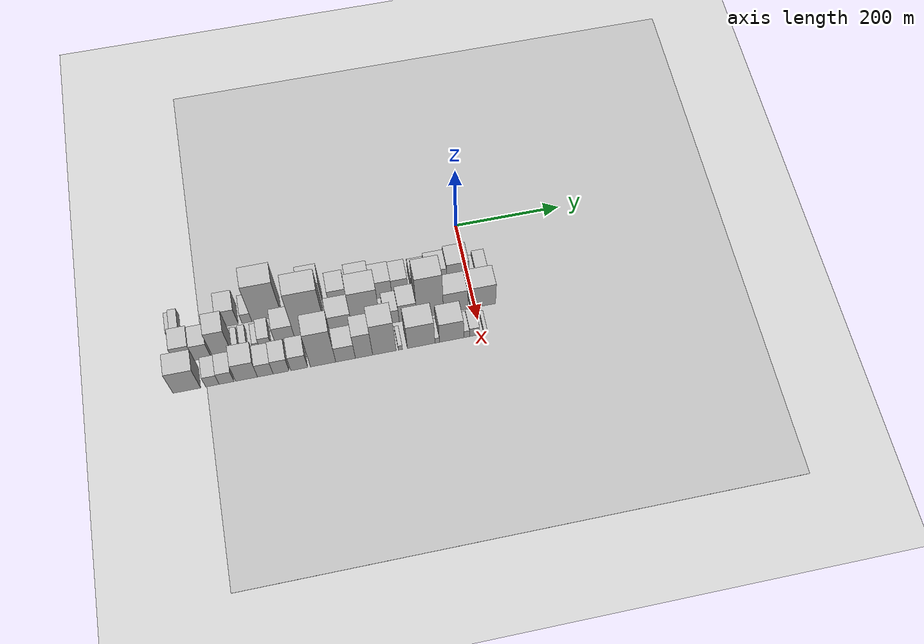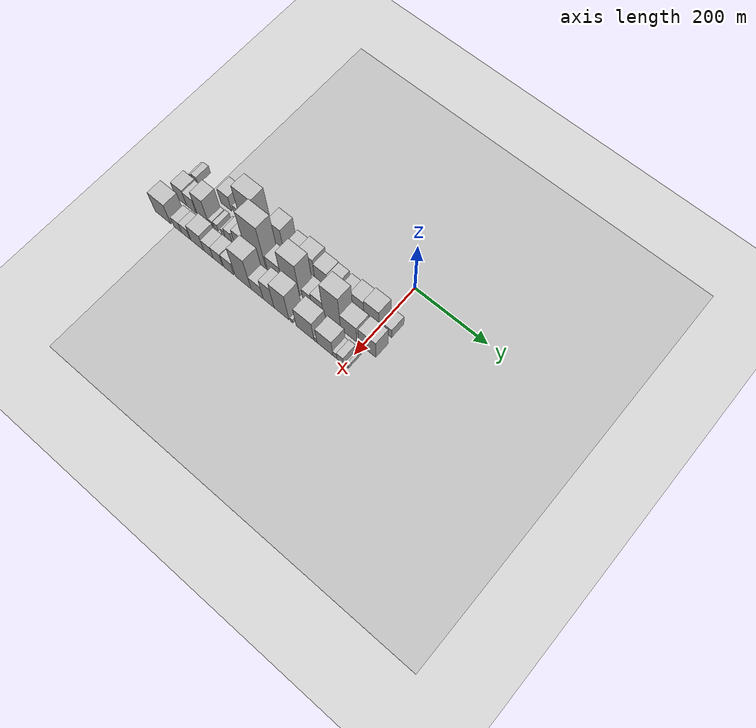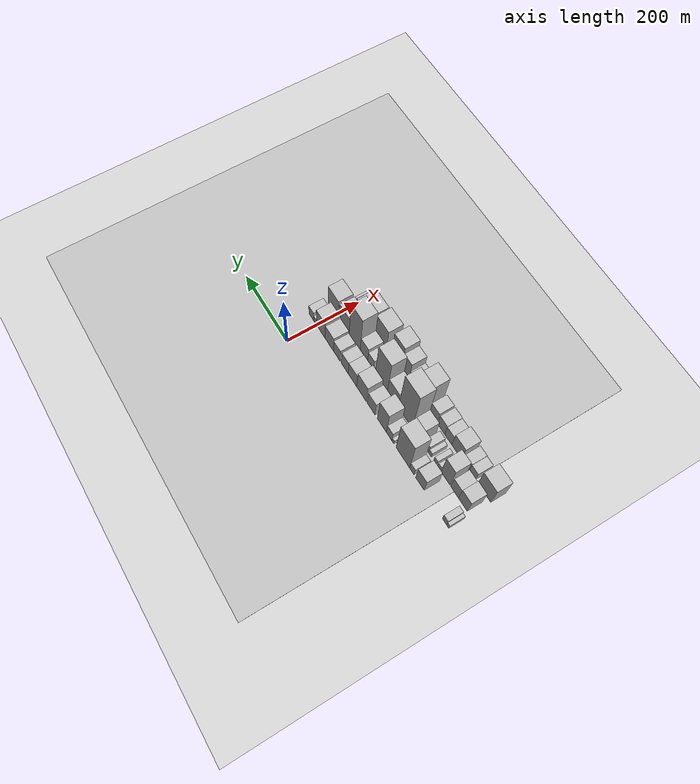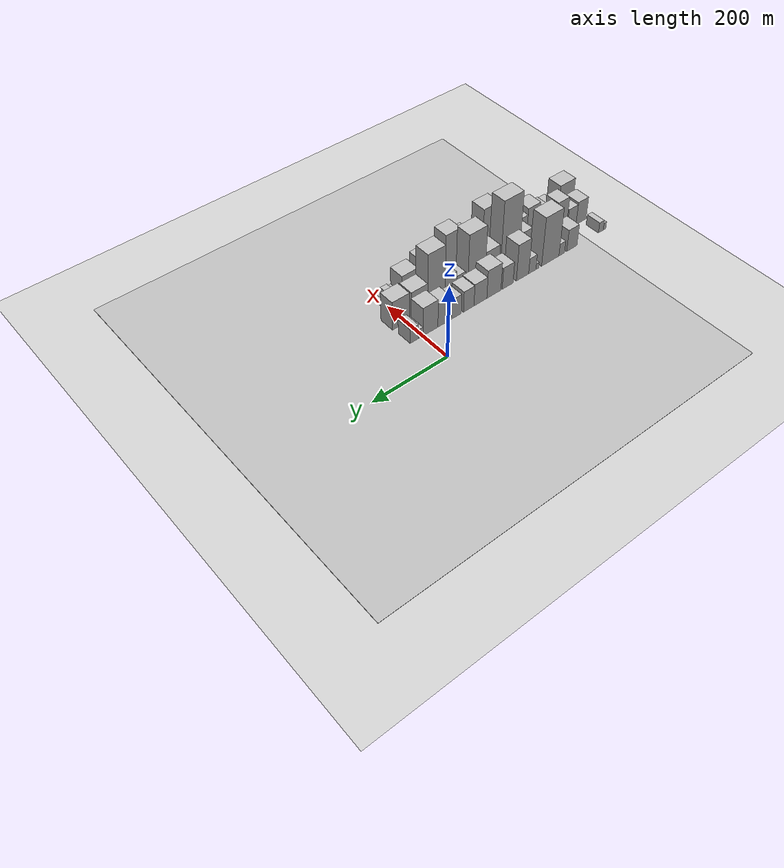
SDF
<sdf version="1.6">
 <world name="default">
  <include><name>ground_plane_1</name><uri>model://HANNAS_ground_plane</uri></include>
  <include>
   <name>ground_plane_2</name>
   <uri>model://HANNAS_ground_plane</uri>
   <pose>100 0 0  0 0 0</pose>
  </include>
  <model name="building_1">
   <static>1</static>
   <pose>100.0000 -555.5974 0 0.000000 0.000000 0.000000</pose>
   <link name="link">
    <pose>0 0 10.50 0 0 0</pose>
    <collision name="collision"><geometry><box><size>40.0000 8.8052 21.0000</size></box></geometry></collision>
    <visual name="visual">
     <cast_shadows>0</cast_shadows>
     <geometry><box><size>40.0000 8.8052 21.0000</size></box></geometry>
     <material>
      <script>
       <uri>model://HANNAS_wall/materials/scripts</uri>
       <uri>model://HANNAS_wall/materials/textures</uri>
       <name>vrc/HANNAS_wall</name>
      </script>
     </material>
    </visual>
   </link>
  </model>
  <model name="building_2">
   <static>1</static>
   <pose>100.0000 -543.2743 0 0.000000 0.000000 0.000000</pose>
   <link name="link">
    <pose>0 0 15.00 0 0 0</pose>
    <collision name="collision"><geometry><box><size>40.0000 15.8411 30.0000</size></box></geometry></collision>
    <visual name="visual">
     <cast_shadows>0</cast_shadows>
     <geometry><box><size>40.0000 15.8411 30.0000</size></box></geometry>
     <material>
      <script>
       <uri>model://HANNAS_wall/materials/scripts</uri>
       <uri>model://HANNAS_wall/materials/textures</uri>
       <name>vrc/HANNAS_wall</name>
      </script>
     </material>
    </visual>
   </link>
  </model>
  <model name="building_3">
   <static>1</static>
   <pose>100.0000 -447.1640 0 0.000000 0.000000 0.000000</pose>
   <link name="link">
    <pose>0 0 31.50 0 0 0</pose>
    <collision name="collision"><geometry><box><size>40.0000 33.4599 63.0000</size></box></geometry></collision>
    <visual name="visual">
     <cast_shadows>0</cast_shadows>
     <geometry><box><size>40.0000 33.4599 63.0000</size></box></geometry>
     <material>
      <script>
       <uri>model://HANNAS_wall/materials/scripts</uri>
       <uri>model://HANNAS_wall/materials/textures</uri>
       <name>vrc/HANNAS_wall</name>
      </script>
     </material>
    </visual>
   </link>
  </model>
  <model name="building_4">
   <static>1</static>
   <pose>100.0000 -414.4182 0 0.000000 0.000000 0.000000</pose>
   <link name="link">
    <pose>0 0 18.00 0 0 0</pose>
    <collision name="collision"><geometry><box><size>40.0000 18.0316 36.0000</size></box></geometry></collision>
    <visual name="visual">
     <cast_shadows>0</cast_shadows>
     <geometry><box><size>40.0000 18.0316 36.0000</size></box></geometry>
     <material>
      <script>
       <uri>model://HANNAS_wall/materials/scripts</uri>
       <uri>model://HANNAS_wall/materials/textures</uri>
       <name>vrc/HANNAS_wall</name>
      </script>
     </material>
    </visual>
   </link>
  </model>
  <model name="building_5">
   <static>1</static>
   <pose>100.0000 -377.8310 0 0.000000 0.000000 0.000000</pose>
   <link name="link">
    <pose>0 0 70.50 0 0 0</pose>
    <collision name="collision"><geometry><box><size>40.0000 55.1429 141.0000</size></box></geometry></collision>
    <visual name="visual">
     <cast_shadows>0</cast_shadows>
     <geometry><box><size>40.0000 55.1429 141.0000</size></box></geometry>
     <material>
      <script>
       <uri>model://HANNAS_wall/materials/scripts</uri>
       <uri>model://HANNAS_wall/materials/textures</uri>
       <name>vrc/HANNAS_wall</name>
      </script>
     </material>
    </visual>
   </link>
  </model>
  <model name="building_6">
   <static>1</static>
   <pose>100.0000 -337.0304 0 0.000000 0.000000 0.000000</pose>
   <link name="link">
    <pose>0 0 9.00 0 0 0</pose>
    <collision name="collision"><geometry><box><size>40.0000 8.4583 18.0000</size></box></geometry></collision>
    <visual name="visual">
     <cast_shadows>0</cast_shadows>
     <geometry><box><size>40.0000 8.4583 18.0000</size></box></geometry>
     <material>
      <script>
       <uri>model://HANNAS_wall/materials/scripts</uri>
       <uri>model://HANNAS_wall/materials/textures</uri>
       <name>vrc/HANNAS_wall</name>
      </script>
     </material>
    </visual>
   </link>
  </model>
  <model name="building_7">
   <static>1</static>
   <pose>100.0000 -321.3310 0 0.000000 0.000000 0.000000</pose>
   <link name="link">
    <pose>0 0 22.50 0 0 0</pose>
    <collision name="collision"><geometry><box><size>40.0000 22.9405 45.0000</size></box></geometry></collision>
    <visual name="visual">
     <cast_shadows>0</cast_shadows>
     <geometry><box><size>40.0000 22.9405 45.0000</size></box></geometry>
     <material>
      <script>
       <uri>model://HANNAS_wall/materials/scripts</uri>
       <uri>model://HANNAS_wall/materials/textures</uri>
       <name>vrc/HANNAS_wall</name>
      </script>
     </material>
    </visual>
   </link>
  </model>
  <model name="building_8">
   <static>1</static>
   <pose>100.0000 -290.8795 0 0.000000 0.000000 0.000000</pose>
   <link name="link">
    <pose>0 0 52.50 0 0 0</pose>
    <collision name="collision"><geometry><box><size>40.0000 37.9624 105.0000</size></box></geometry></collision>
    <visual name="visual">
     <cast_shadows>0</cast_shadows>
     <geometry><box><size>40.0000 37.9624 105.0000</size></box></geometry>
     <material>
      <script>
       <uri>model://HANNAS_wall/materials/scripts</uri>
       <uri>model://HANNAS_wall/materials/textures</uri>
       <name>vrc/HANNAS_wall</name>
      </script>
     </material>
    </visual>
   </link>
  </model>
  <model name="building_9">
   <static>1</static>
   <pose>100.0000 -245.4455 0 0.000000 0.000000 0.000000</pose>
   <link name="link">
    <pose>0 0 31.50 0 0 0</pose>
    <collision name="collision"><geometry><box><size>40.0000 32.9055 63.0000</size></box></geometry></collision>
    <visual name="visual">
     <cast_shadows>0</cast_shadows>
     <geometry><box><size>40.0000 32.9055 63.0000</size></box></geometry>
     <material>
      <script>
       <uri>model://HANNAS_wall/materials/scripts</uri>
       <uri>model://HANNAS_wall/materials/textures</uri>
       <name>vrc/HANNAS_wall</name>
      </script>
     </material>
    </visual>
   </link>
  </model>
  <model name="building_10">
   <static>1</static>
   <pose>100.0000 -203.9878 0 0.000000 0.000000 0.000000</pose>
   <link name="link">
    <pose>0 0 40.50 0 0 0</pose>
    <collision name="collision"><geometry><box><size>40.0000 42.0099 81.0000</size></box></geometry></collision>
    <visual name="visual">
     <cast_shadows>0</cast_shadows>
     <geometry><box><size>40.0000 42.0099 81.0000</size></box></geometry>
     <material>
      <script>
       <uri>model://HANNAS_wall/materials/scripts</uri>
       <uri>model://HANNAS_wall/materials/textures</uri>
       <name>vrc/HANNAS_wall</name>
      </script>
     </material>
    </visual>
   </link>
  </model>
  <model name="building_11">
   <static>1</static>
   <pose>100.0000 -164.1223 0 0.000000 0.000000 0.000000</pose>
   <link name="link">
    <pose>0 0 31.50 0 0 0</pose>
    <collision name="collision"><geometry><box><size>40.0000 37.7210 63.0000</size></box></geometry></collision>
    <visual name="visual">
     <cast_shadows>0</cast_shadows>
     <geometry><box><size>40.0000 37.7210 63.0000</size></box></geometry>
     <material>
      <script>
       <uri>model://HANNAS_wall/materials/scripts</uri>
       <uri>model://HANNAS_wall/materials/textures</uri>
       <name>vrc/HANNAS_wall</name>
      </script>
     </material>
    </visual>
   </link>
  </model>
  <model name="building_12">
   <static>1</static>
   <pose>100.0000 -129.9413 0 0.000000 0.000000 0.000000</pose>
   <link name="link">
    <pose>0 0 30.00 0 0 0</pose>
    <collision name="collision"><geometry><box><size>40.0000 30.6410 60.0000</size></box></geometry></collision>
    <visual name="visual">
     <cast_shadows>0</cast_shadows>
     <geometry><box><size>40.0000 30.6410 60.0000</size></box></geometry>
     <material>
      <script>
       <uri>model://HANNAS_wall/materials/scripts</uri>
       <uri>model://HANNAS_wall/materials/textures</uri>
       <name>vrc/HANNAS_wall</name>
      </script>
     </material>
    </visual>
   </link>
  </model>
  <model name="building_13">
   <static>1</static>
   <pose>100.0000 -93.8213 0 0.000000 0.000000 0.000000</pose>
   <link name="link">
    <pose>0 0 28.50 0 0 0</pose>
    <collision name="collision"><geometry><box><size>40.0000 29.5989 57.0000</size></box></geometry></collision>
    <visual name="visual">
     <cast_shadows>0</cast_shadows>
     <geometry><box><size>40.0000 29.5989 57.0000</size></box></geometry>
     <material>
      <script>
       <uri>model://HANNAS_wall/materials/scripts</uri>
       <uri>model://HANNAS_wall/materials/textures</uri>
       <name>vrc/HANNAS_wall</name>
      </script>
     </material>
    </visual>
   </link>
  </model>
  <model name="building_14">
   <static>1</static>
   <pose>100.0000 -60.3481 0 0.000000 0.000000 0.000000</pose>
   <link name="link">
    <pose>0 0 34.50 0 0 0</pose>
    <collision name="collision"><geometry><box><size>40.0000 37.3476 69.0000</size></box></geometry></collision>
    <visual name="visual">
     <cast_shadows>0</cast_shadows>
     <geometry><box><size>40.0000 37.3476 69.0000</size></box></geometry>
     <material>
      <script>
       <uri>model://HANNAS_wall/materials/scripts</uri>
       <uri>model://HANNAS_wall/materials/textures</uri>
       <name>vrc/HANNAS_wall</name>
      </script>
     </material>
    </visual>
   </link>
  </model>
  <model name="building_15">
   <static>1</static>
   <pose>100.0000 -20.8964 0 0.000000 0.000000 0.000000</pose>
   <link name="link">
    <pose>0 0 40.50 0 0 0</pose>
    <collision name="collision"><geometry><box><size>40.0000 41.5558 81.0000</size></box></geometry></collision>
    <visual name="visual">
     <cast_shadows>0</cast_shadows>
     <geometry><box><size>40.0000 41.5558 81.0000</size></box></geometry>
     <material>
      <script>
       <uri>model://HANNAS_wall/materials/scripts</uri>
       <uri>model://HANNAS_wall/materials/textures</uri>
       <name>vrc/HANNAS_wall</name>
      </script>
     </material>
    </visual>
   </link>
  </model>
  <model name="building_16">
   <static>1</static>
   <pose>100.0000 6.0256 0 0.000000 0.000000 0.000000</pose>
   <link name="link">
    <pose>0 0 13.50 0 0 0</pose>
    <collision name="collision"><geometry><box><size>40.0000 12.2881 27.0000</size></box></geometry></collision>
    <visual name="visual">
     <cast_shadows>0</cast_shadows>
     <geometry><box><size>40.0000 12.2881 27.0000</size></box></geometry>
     <material>
      <script>
       <uri>model://HANNAS_wall/materials/scripts</uri>
       <uri>model://HANNAS_wall/materials/textures</uri>
       <name>vrc/HANNAS_wall</name>
      </script>
     </material>
    </visual>
   </link>
  </model>
  <model name="building_17">
   <static>1</static>
   <pose>100.0000 23.6727 0 0.000000 0.000000 0.000000</pose>
   <link name="link">
    <pose>0 0 21.00 0 0 0</pose>
    <collision name="collision"><geometry><box><size>40.0000 23.0060 42.0000</size></box></geometry></collision>
    <visual name="visual">
     <cast_shadows>0</cast_shadows>
     <geometry><box><size>40.0000 23.0060 42.0000</size></box></geometry>
     <material>
      <script>
       <uri>model://HANNAS_wall/materials/scripts</uri>
       <uri>model://HANNAS_wall/materials/textures</uri>
       <name>vrc/HANNAS_wall</name>
      </script>
     </material>
    </visual>
   </link>
  </model>
  <model name="building_37">
   <static>1</static>
   <pose>155.0000 -533.1920 0 0.000000 0.000000 0.000000</pose>
   <link name="link">
    <pose>0 0 33.00 0 0 0</pose>
    <collision name="collision"><geometry><box><size>40.0000 33.6159 66.0000</size></box></geometry></collision>
    <visual name="visual">
     <cast_shadows>0</cast_shadows>
     <geometry><box><size>40.0000 33.6159 66.0000</size></box></geometry>
     <material>
      <script>
       <uri>model://HANNAS_wall/materials/scripts</uri>
       <uri>model://HANNAS_wall/materials/textures</uri>
       <name>vrc/HANNAS_wall</name>
      </script>
     </material>
    </visual>
   </link>
  </model>
  <model name="building_38">
   <static>1</static>
   <pose>155.0000 -501.3378 0 0.000000 0.000000 0.000000</pose>
   <link name="link">
    <pose>0 0 30.00 0 0 0</pose>
    <collision name="collision"><geometry><box><size>40.0000 30.0925 60.0000</size></box></geometry></collision>
    <visual name="visual">
     <cast_shadows>0</cast_shadows>
     <geometry><box><size>40.0000 30.0925 60.0000</size></box></geometry>
     <material>
      <script>
       <uri>model://HANNAS_wall/materials/scripts</uri>
       <uri>model://HANNAS_wall/materials/textures</uri>
       <name>vrc/HANNAS_wall</name>
      </script>
     </material>
    </visual>
   </link>
  </model>
  <model name="building_39">
   <static>1</static>
   <pose>155.0000 -465.8899 0 0.000000 0.000000 0.000000</pose>
   <link name="link">
    <pose>0 0 49.50 0 0 0</pose>
    <collision name="collision"><geometry><box><size>40.0000 34.8033 99.0000</size></box></geometry></collision>
    <visual name="visual">
     <cast_shadows>0</cast_shadows>
     <geometry><box><size>40.0000 34.8033 99.0000</size></box></geometry>
     <material>
      <script>
       <uri>model://HANNAS_wall/materials/scripts</uri>
       <uri>model://HANNAS_wall/materials/textures</uri>
       <name>vrc/HANNAS_wall</name>
      </script>
     </material>
    </visual>
   </link>
  </model>
  <model name="building_40">
   <static>1</static>
   <pose>155.0000 -439.9350 0 0.000000 0.000000 0.000000</pose>
   <link name="link">
    <pose>0 0 12.00 0 0 0</pose>
    <collision name="collision"><geometry><box><size>40.0000 11.1066 24.0000</size></box></geometry></collision>
    <visual name="visual">
     <cast_shadows>0</cast_shadows>
     <geometry><box><size>40.0000 11.1066 24.0000</size></box></geometry>
     <material>
      <script>
       <uri>model://HANNAS_wall/materials/scripts</uri>
       <uri>model://HANNAS_wall/materials/textures</uri>
       <name>vrc/HANNAS_wall</name>
      </script>
     </material>
    </visual>
   </link>
  </model>
  <model name="building_41">
   <static>1</static>
   <pose>155.0000 -425.0073 0 0.000000 0.000000 0.000000</pose>
   <link name="link">
    <pose>0 0 13.50 0 0 0</pose>
    <collision name="collision"><geometry><box><size>40.0000 12.7488 27.0000</size></box></geometry></collision>
    <visual name="visual">
     <cast_shadows>0</cast_shadows>
     <geometry><box><size>40.0000 12.7488 27.0000</size></box></geometry>
     <material>
      <script>
       <uri>model://HANNAS_wall/materials/scripts</uri>
       <uri>model://HANNAS_wall/materials/textures</uri>
       <name>vrc/HANNAS_wall</name>
      </script>
     </material>
    </visual>
   </link>
  </model>
  <model name="building_42">
   <static>1</static>
   <pose>155.0000 -403.9204 0 0.000000 0.000000 0.000000</pose>
   <link name="link">
    <pose>0 0 12.00 0 0 0</pose>
    <collision name="collision"><geometry><box><size>40.0000 11.4250 24.0000</size></box></geometry></collision>
    <visual name="visual">
     <cast_shadows>0</cast_shadows>
     <geometry><box><size>40.0000 11.4250 24.0000</size></box></geometry>
     <material>
      <script>
       <uri>model://HANNAS_wall/materials/scripts</uri>
       <uri>model://HANNAS_wall/materials/textures</uri>
       <name>vrc/HANNAS_wall</name>
      </script>
     </material>
    </visual>
   </link>
  </model>
  <model name="building_43">
   <static>1</static>
   <pose>155.0000 -387.4615 0 0.000000 0.000000 0.000000</pose>
   <link name="link">
    <pose>0 0 19.50 0 0 0</pose>
    <collision name="collision"><geometry><box><size>40.0000 21.4928 39.0000</size></box></geometry></collision>
    <visual name="visual">
     <cast_shadows>0</cast_shadows>
     <geometry><box><size>40.0000 21.4928 39.0000</size></box></geometry>
     <material>
      <script>
       <uri>model://HANNAS_wall/materials/scripts</uri>
       <uri>model://HANNAS_wall/materials/textures</uri>
       <name>vrc/HANNAS_wall</name>
      </script>
     </material>
    </visual>
   </link>
  </model>
  <model name="building_44">
   <static>1</static>
   <pose>155.0000 -350.4038 0 0.000000 0.000000 0.000000</pose>
   <link name="link">
    <pose>0 0 34.50 0 0 0</pose>
    <collision name="collision"><geometry><box><size>40.0000 36.6226 69.0000</size></box></geometry></collision>
    <visual name="visual">
     <cast_shadows>0</cast_shadows>
     <geometry><box><size>40.0000 36.6226 69.0000</size></box></geometry>
     <material>
      <script>
       <uri>model://HANNAS_wall/materials/scripts</uri>
       <uri>model://HANNAS_wall/materials/textures</uri>
       <name>vrc/HANNAS_wall</name>
      </script>
     </material>
    </visual>
   </link>
  </model>
  <model name="building_45">
   <static>1</static>
   <pose>155.0000 -303.1391 0 0.000000 0.000000 0.000000</pose>
   <link name="link">
    <pose>0 0 96.00 0 0 0</pose>
    <collision name="collision"><geometry><box><size>40.0000 57.9068 192.0000</size></box></geometry></collision>
    <visual name="visual">
     <cast_shadows>0</cast_shadows>
     <geometry><box><size>40.0000 57.9068 192.0000</size></box></geometry>
     <material>
      <script>
       <uri>model://HANNAS_wall/materials/scripts</uri>
       <uri>model://HANNAS_wall/materials/textures</uri>
       <name>vrc/HANNAS_wall</name>
      </script>
     </material>
    </visual>
   </link>
  </model>
  <model name="building_46">
   <static>1</static>
   <pose>155.0000 -248.7968 0 0.000000 0.000000 0.000000</pose>
   <link name="link">
    <pose>0 0 36.00 0 0 0</pose>
    <collision name="collision"><geometry><box><size>40.0000 42.7778 72.0000</size></box></geometry></collision>
    <visual name="visual">
     <cast_shadows>0</cast_shadows>
     <geometry><box><size>40.0000 42.7778 72.0000</size></box></geometry>
     <material>
      <script>
       <uri>model://HANNAS_wall/materials/scripts</uri>
       <uri>model://HANNAS_wall/materials/textures</uri>
       <name>vrc/HANNAS_wall</name>
      </script>
     </material>
    </visual>
   </link>
  </model>
  <model name="building_47">
   <static>1</static>
   <pose>155.0000 -201.4430 0 0.000000 0.000000 0.000000</pose>
   <link name="link">
    <pose>0 0 75.00 0 0 0</pose>
    <collision name="collision"><geometry><box><size>40.0000 51.9298 150.0000</size></box></geometry></collision>
    <visual name="visual">
     <cast_shadows>0</cast_shadows>
     <geometry><box><size>40.0000 51.9298 150.0000</size></box></geometry>
     <material>
      <script>
       <uri>model://HANNAS_wall/materials/scripts</uri>
       <uri>model://HANNAS_wall/materials/textures</uri>
       <name>vrc/HANNAS_wall</name>
      </script>
     </material>
    </visual>
   </link>
  </model>
  <model name="building_48">
   <static>1</static>
   <pose>155.0000 -154.5141 0 0.000000 0.000000 0.000000</pose>
   <link name="link">
    <pose>0 0 25.50 0 0 0</pose>
    <collision name="collision"><geometry><box><size>40.0000 25.9280 51.0000</size></box></geometry></collision>
    <visual name="visual">
     <cast_shadows>0</cast_shadows>
     <geometry><box><size>40.0000 25.9280 51.0000</size></box></geometry>
     <material>
      <script>
       <uri>model://HANNAS_wall/materials/scripts</uri>
       <uri>model://HANNAS_wall/materials/textures</uri>
       <name>vrc/HANNAS_wall</name>
      </script>
     </material>
    </visual>
   </link>
  </model>
  <model name="building_49">
   <static>1</static>
   <pose>155.0000 -125.0079 0 0.000000 0.000000 0.000000</pose>
   <link name="link">
    <pose>0 0 33.00 0 0 0</pose>
    <collision name="collision"><geometry><box><size>40.0000 33.0843 66.0000</size></box></geometry></collision>
    <visual name="visual">
     <cast_shadows>0</cast_shadows>
     <geometry><box><size>40.0000 33.0843 66.0000</size></box></geometry>
     <material>
      <script>
       <uri>model://HANNAS_wall/materials/scripts</uri>
       <uri>model://HANNAS_wall/materials/textures</uri>
       <name>vrc/HANNAS_wall</name>
      </script>
     </material>
    </visual>
   </link>
  </model>
  <model name="building_50">
   <static>1</static>
   <pose>155.0000 -83.7660 0 0.000000 0.000000 0.000000</pose>
   <link name="link">
    <pose>0 0 79.50 0 0 0</pose>
    <collision name="collision"><geometry><box><size>40.0000 49.3995 159.0000</size></box></geometry></collision>
    <visual name="visual">
     <cast_shadows>0</cast_shadows>
     <geometry><box><size>40.0000 49.3995 159.0000</size></box></geometry>
     <material>
      <script>
       <uri>model://HANNAS_wall/materials/scripts</uri>
       <uri>model://HANNAS_wall/materials/textures</uri>
       <name>vrc/HANNAS_wall</name>
      </script>
     </material>
    </visual>
   </link>
  </model>
  <model name="building_51">
   <static>1</static>
   <pose>155.0000 -36.3835 0 0.000000 0.000000 0.000000</pose>
   <link name="link">
    <pose>0 0 39.00 0 0 0</pose>
    <collision name="collision"><geometry><box><size>40.0000 45.3655 78.0000</size></box></geometry></collision>
    <visual name="visual">
     <cast_shadows>0</cast_shadows>
     <geometry><box><size>40.0000 45.3655 78.0000</size></box></geometry>
     <material>
      <script>
       <uri>model://HANNAS_wall/materials/scripts</uri>
       <uri>model://HANNAS_wall/materials/textures</uri>
       <name>vrc/HANNAS_wall</name>
      </script>
     </material>
    </visual>
   </link>
  </model>
  <model name="building_52">
   <static>1</static>
   <pose>155.0000 14.9629 0 0.000000 0.000000 0.000000</pose>
   <link name="link">
    <pose>0 0 40.50 0 0 0</pose>
    <collision name="collision"><geometry><box><size>40.0000 47.3273 81.0000</size></box></geometry></collision>
    <visual name="visual">
     <cast_shadows>0</cast_shadows>
     <geometry><box><size>40.0000 47.3273 81.0000</size></box></geometry>
     <material>
      <script>
       <uri>model://HANNAS_wall/materials/scripts</uri>
       <uri>model://HANNAS_wall/materials/textures</uri>
       <name>vrc/HANNAS_wall</name>
      </script>
     </material>
    </visual>
   </link>
  </model>
  <model name="building_69">
   <static>1</static>
   <pose>210.0000 -535.4516 0 0.000000 0.000000 0.000000</pose>
   <link name="link">
    <pose>0 0 42.00 0 0 0</pose>
    <collision name="collision"><geometry><box><size>40.0000 49.0967 84.0000</size></box></geometry></collision>
    <visual name="visual">
     <cast_shadows>0</cast_shadows>
     <geometry><box><size>40.0000 49.0967 84.0000</size></box></geometry>
     <material>
      <script>
       <uri>model://HANNAS_wall/materials/scripts</uri>
       <uri>model://HANNAS_wall/materials/textures</uri>
       <name>vrc/HANNAS_wall</name>
      </script>
     </material>
    </visual>
   </link>
  </model>
  <model name="building_70">
   <static>1</static>
   <pose>210.0000 -489.8769 0 0.000000 0.000000 0.000000</pose>
   <link name="link">
    <pose>0 0 21.00 0 0 0</pose>
    <collision name="collision"><geometry><box><size>40.0000 24.0527 42.0000</size></box></geometry></collision>
    <visual name="visual">
     <cast_shadows>0</cast_shadows>
     <geometry><box><size>40.0000 24.0527 42.0000</size></box></geometry>
     <material>
      <script>
       <uri>model://HANNAS_wall/materials/scripts</uri>
       <uri>model://HANNAS_wall/materials/textures</uri>
       <name>vrc/HANNAS_wall</name>
      </script>
     </material>
    </visual>
   </link>
  </model>
  <model name="building_71">
   <static>1</static>
   <pose>210.0000 -464.6058 0 0.000000 0.000000 0.000000</pose>
   <link name="link">
    <pose>0 0 22.50 0 0 0</pose>
    <collision name="collision"><geometry><box><size>40.0000 26.4896 45.0000</size></box></geometry></collision>
    <visual name="visual">
     <cast_shadows>0</cast_shadows>
     <geometry><box><size>40.0000 26.4896 45.0000</size></box></geometry>
     <material>
      <script>
       <uri>model://HANNAS_wall/materials/scripts</uri>
       <uri>model://HANNAS_wall/materials/textures</uri>
       <name>vrc/HANNAS_wall</name>
      </script>
     </material>
    </visual>
   </link>
  </model>
  <model name="building_72">
   <static>1</static>
   <pose>210.0000 -428.7178 0 0.000000 0.000000 0.000000</pose>
   <link name="link">
    <pose>0 0 34.50 0 0 0</pose>
    <collision name="collision"><geometry><box><size>40.0000 39.2863 69.0000</size></box></geometry></collision>
    <visual name="visual">
     <cast_shadows>0</cast_shadows>
     <geometry><box><size>40.0000 39.2863 69.0000</size></box></geometry>
     <material>
      <script>
       <uri>model://HANNAS_wall/materials/scripts</uri>
       <uri>model://HANNAS_wall/materials/textures</uri>
       <name>vrc/HANNAS_wall</name>
      </script>
     </material>
    </visual>
   </link>
  </model>
  <model name="building_73">
   <static>1</static>
   <pose>210.0000 -395.0096 0 0.000000 0.000000 0.000000</pose>
   <link name="link">
    <pose>0 0 25.50 0 0 0</pose>
    <collision name="collision"><geometry><box><size>40.0000 28.1303 51.0000</size></box></geometry></collision>
    <visual name="visual">
     <cast_shadows>0</cast_shadows>
     <geometry><box><size>40.0000 28.1303 51.0000</size></box></geometry>
     <material>
      <script>
       <uri>model://HANNAS_wall/materials/scripts</uri>
       <uri>model://HANNAS_wall/materials/textures</uri>
       <name>vrc/HANNAS_wall</name>
      </script>
     </material>
    </visual>
   </link>
  </model>
  <model name="building_74">
   <static>1</static>
   <pose>210.0000 -366.5187 0 0.000000 0.000000 0.000000</pose>
   <link name="link">
    <pose>0 0 27.00 0 0 0</pose>
    <collision name="collision"><geometry><box><size>40.0000 28.8515 54.0000</size></box></geometry></collision>
    <visual name="visual">
     <cast_shadows>0</cast_shadows>
     <geometry><box><size>40.0000 28.8515 54.0000</size></box></geometry>
     <material>
      <script>
       <uri>model://HANNAS_wall/materials/scripts</uri>
       <uri>model://HANNAS_wall/materials/textures</uri>
       <name>vrc/HANNAS_wall</name>
      </script>
     </material>
    </visual>
   </link>
  </model>
  <model name="building_75">
   <static>1</static>
   <pose>210.0000 -333.8045 0 0.000000 0.000000 0.000000</pose>
   <link name="link">
    <pose>0 0 28.50 0 0 0</pose>
    <collision name="collision"><geometry><box><size>40.0000 30.5768 57.0000</size></box></geometry></collision>
    <visual name="visual">
     <cast_shadows>0</cast_shadows>
     <geometry><box><size>40.0000 30.5768 57.0000</size></box></geometry>
     <material>
      <script>
       <uri>model://HANNAS_wall/materials/scripts</uri>
       <uri>model://HANNAS_wall/materials/textures</uri>
       <name>vrc/HANNAS_wall</name>
      </script>
     </material>
    </visual>
   </link>
  </model>
  <model name="building_76">
   <static>1</static>
   <pose>210.0000 -290.5045 0 0.000000 0.000000 0.000000</pose>
   <link name="link">
    <pose>0 0 69.00 0 0 0</pose>
    <collision name="collision"><geometry><box><size>40.0000 46.0232 138.0000</size></box></geometry></collision>
    <visual name="visual">
     <cast_shadows>0</cast_shadows>
     <geometry><box><size>40.0000 46.0232 138.0000</size></box></geometry>
     <material>
      <script>
       <uri>model://HANNAS_wall/materials/scripts</uri>
       <uri>model://HANNAS_wall/materials/textures</uri>
       <name>vrc/HANNAS_wall</name>
      </script>
     </material>
    </visual>
   </link>
  </model>
  <model name="building_77">
   <static>1</static>
   <pose>210.0000 -249.5844 0 0.000000 0.000000 0.000000</pose>
   <link name="link">
    <pose>0 0 30.00 0 0 0</pose>
    <collision name="collision"><geometry><box><size>40.0000 35.8169 60.0000</size></box></geometry></collision>
    <visual name="visual">
     <cast_shadows>0</cast_shadows>
     <geometry><box><size>40.0000 35.8169 60.0000</size></box></geometry>
     <material>
      <script>
       <uri>model://HANNAS_wall/materials/scripts</uri>
       <uri>model://HANNAS_wall/materials/textures</uri>
       <name>vrc/HANNAS_wall</name>
      </script>
     </material>
    </visual>
   </link>
  </model>
  <model name="building_78">
   <static>1</static>
   <pose>210.0000 -215.9124 0 0.000000 0.000000 0.000000</pose>
   <link name="link">
    <pose>0 0 48.00 0 0 0</pose>
    <collision name="collision"><geometry><box><size>40.0000 31.5271 96.0000</size></box></geometry></collision>
    <visual name="visual">
     <cast_shadows>0</cast_shadows>
     <geometry><box><size>40.0000 31.5271 96.0000</size></box></geometry>
     <material>
      <script>
       <uri>model://HANNAS_wall/materials/scripts</uri>
       <uri>model://HANNAS_wall/materials/textures</uri>
       <name>vrc/HANNAS_wall</name>
      </script>
     </material>
    </visual>
   </link>
  </model>
  <model name="building_79">
   <static>1</static>
   <pose>210.0000 -178.6204 0 0.000000 0.000000 0.000000</pose>
   <link name="link">
    <pose>0 0 61.50 0 0 0</pose>
    <collision name="collision"><geometry><box><size>40.0000 43.0570 123.0000</size></box></geometry></collision>
    <visual name="visual">
     <cast_shadows>0</cast_shadows>
     <geometry><box><size>40.0000 43.0570 123.0000</size></box></geometry>
     <material>
      <script>
       <uri>model://HANNAS_wall/materials/scripts</uri>
       <uri>model://HANNAS_wall/materials/textures</uri>
       <name>vrc/HANNAS_wall</name>
      </script>
     </material>
    </visual>
   </link>
  </model>
  <model name="building_80">
   <static>1</static>
   <pose>210.0000 -149.3217 0 0.000000 0.000000 0.000000</pose>
   <link name="link">
    <pose>0 0 9.00 0 0 0</pose>
    <collision name="collision"><geometry><box><size>40.0000 7.5404 18.0000</size></box></geometry></collision>
    <visual name="visual">
     <cast_shadows>0</cast_shadows>
     <geometry><box><size>40.0000 7.5404 18.0000</size></box></geometry>
     <material>
      <script>
       <uri>model://HANNAS_wall/materials/scripts</uri>
       <uri>model://HANNAS_wall/materials/textures</uri>
       <name>vrc/HANNAS_wall</name>
      </script>
     </material>
    </visual>
   </link>
  </model>
  <model name="building_81">
   <static>1</static>
   <pose>210.0000 -111.2020 0 0.000000 0.000000 0.000000</pose>
   <link name="link">
    <pose>0 0 45.00 0 0 0</pose>
    <collision name="collision"><geometry><box><size>40.0000 50.6991 90.0000</size></box></geometry></collision>
    <visual name="visual">
     <cast_shadows>0</cast_shadows>
     <geometry><box><size>40.0000 50.6991 90.0000</size></box></geometry>
     <material>
      <script>
       <uri>model://HANNAS_wall/materials/scripts</uri>
       <uri>model://HANNAS_wall/materials/textures</uri>
       <name>vrc/HANNAS_wall</name>
      </script>
     </material>
    </visual>
   </link>
  </model>
  <model name="building_82">
   <static>1</static>
   <pose>210.0000 -81.6514 0 0.000000 0.000000 0.000000</pose>
   <link name="link">
    <pose>0 0 10.50 0 0 0</pose>
    <collision name="collision"><geometry><box><size>40.0000 8.4020 21.0000</size></box></geometry></collision>
    <visual name="visual">
     <cast_shadows>0</cast_shadows>
     <geometry><box><size>40.0000 8.4020 21.0000</size></box></geometry>
     <material>
      <script>
       <uri>model://HANNAS_wall/materials/scripts</uri>
       <uri>model://HANNAS_wall/materials/textures</uri>
       <name>vrc/HANNAS_wall</name>
      </script>
     </material>
    </visual>
   </link>
  </model>
  <model name="building_83">
   <static>1</static>
   <pose>210.0000 -55.0487 0 0.000000 0.000000 0.000000</pose>
   <link name="link">
    <pose>0 0 37.50 0 0 0</pose>
    <collision name="collision"><geometry><box><size>40.0000 44.8033 75.0000</size></box></geometry></collision>
    <visual name="visual">
     <cast_shadows>0</cast_shadows>
     <geometry><box><size>40.0000 44.8033 75.0000</size></box></geometry>
     <material>
      <script>
       <uri>model://HANNAS_wall/materials/scripts</uri>
       <uri>model://HANNAS_wall/materials/textures</uri>
       <name>vrc/HANNAS_wall</name>
      </script>
     </material>
    </visual>
   </link>
  </model>
  <model name="building_84">
   <static>1</static>
   <pose>210.0000 -27.1584 0 0.000000 0.000000 0.000000</pose>
   <link name="link">
    <pose>0 0 13.50 0 0 0</pose>
    <collision name="collision"><geometry><box><size>40.0000 10.9774 27.0000</size></box></geometry></collision>
    <visual name="visual">
     <cast_shadows>0</cast_shadows>
     <geometry><box><size>40.0000 10.9774 27.0000</size></box></geometry>
     <material>
      <script>
       <uri>model://HANNAS_wall/materials/scripts</uri>
       <uri>model://HANNAS_wall/materials/textures</uri>
       <name>vrc/HANNAS_wall</name>
      </script>
     </material>
    </visual>
   </link>
  </model>
  <model name="building_85">
   <static>1</static>
   <pose>210.0000 -12.4625 0 0.000000 0.000000 0.000000</pose>
   <link name="link">
    <pose>0 0 16.50 0 0 0</pose>
    <collision name="collision"><geometry><box><size>40.0000 18.4143 33.0000</size></box></geometry></collision>
    <visual name="visual">
     <cast_shadows>0</cast_shadows>
     <geometry><box><size>40.0000 18.4143 33.0000</size></box></geometry>
     <material>
      <script>
       <uri>model://HANNAS_wall/materials/scripts</uri>
       <uri>model://HANNAS_wall/materials/textures</uri>
       <name>vrc/HANNAS_wall</name>
      </script>
     </material>
    </visual>
   </link>
  </model>
  <model name="building_86">
   <static>1</static>
   <pose>210.0000 7.9236 0 0.000000 0.000000 0.000000</pose>
   <link name="link">
    <pose>0 0 7.50 0 0 0</pose>
    <collision name="collision"><geometry><box><size>40.0000 6.3581 15.0000</size></box></geometry></collision>
    <visual name="visual">
     <cast_shadows>0</cast_shadows>
     <geometry><box><size>40.0000 6.3581 15.0000</size></box></geometry>
     <material>
      <script>
       <uri>model://HANNAS_wall/materials/scripts</uri>
       <uri>model://HANNAS_wall/materials/textures</uri>
       <name>vrc/HANNAS_wall</name>
      </script>
     </material>
    </visual>
   </link>
  </model>
 </world>
</sdf>
